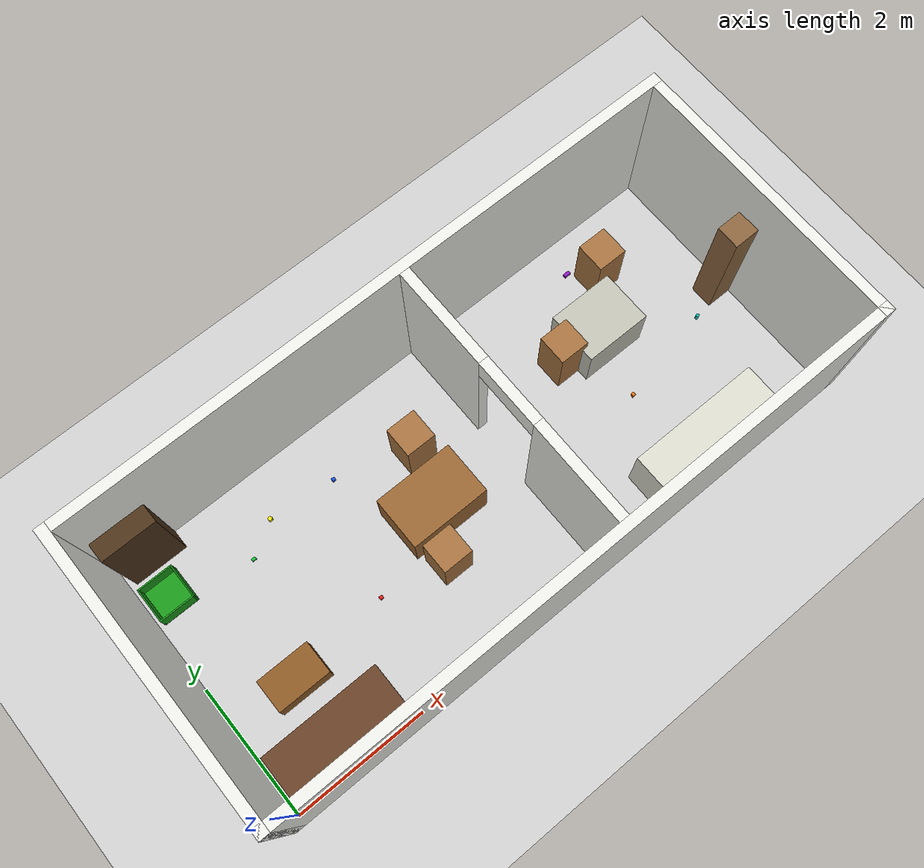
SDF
<?xml version="1.0" ?>
<sdf version="1.6">
<world name="tidybot_home">

  <!-- ================================================================
       PHYSICS
       ================================================================ -->
  <physics type="ode" name="default_physics">
    <max_step_size>0.001</max_step_size>
    <real_time_factor>1.0</real_time_factor>
    <real_time_update_rate>1000</real_time_update_rate>
    <gravity>0 0 -9.81</gravity>
    <ode>
      <solver>
        <type>quick</type>
        <iters>50</iters>
        <sor>1.3</sor>
      </solver>
      <constraints>
        <cfm>0.0</cfm>
        <erp>0.2</erp>
        <contact_max_correcting_vel>100.0</contact_max_correcting_vel>
        <contact_surface_layer>0.001</contact_surface_layer>
      </constraints>
    </ode>
  </physics>

  <!-- ================================================================
       SCENE / LIGHTING
       ================================================================ -->
  <scene>
    <ambient>0.4 0.4 0.4 1</ambient>
    <background>0.7 0.7 0.7 1</background>
    <shadows>true</shadows>
  </scene>

  <!-- Sun (directional, angled to cast soft indoor shadows) -->
  <light type="directional" name="sun">
    <cast_shadows>true</cast_shadows>
    <pose>0 0 10 0 0.4 0</pose>
    <diffuse>0.85 0.85 0.85 1</diffuse>
    <specular>0.2  0.2  0.2  1</specular>
    <direction>-0.5 0.1 -0.9</direction>
    <attenuation><range>1000</range><constant>0.9</constant><linear>0.01</linear><quadratic>0.001</quadratic></attenuation>
  </light>

  <!-- Ceiling fill light over Room 1 -->
  <light type="point" name="room1_fill">
    <pose>2.5 2.0 2.4 0 0 0</pose>
    <diffuse>0.6 0.6 0.6 1</diffuse>
    <specular>0.1 0.1 0.1 1</specular>
    <attenuation><range>8</range><constant>0.5</constant><linear>0.1</linear><quadratic>0.01</quadratic></attenuation>
  </light>

  <!-- Ceiling fill light over Room 2 -->
  <light type="point" name="room2_fill">
    <pose>7.15 2.0 2.4 0 0 0</pose>
    <diffuse>0.6 0.6 0.6 1</diffuse>
    <specular>0.1 0.1 0.1 1</specular>
    <attenuation><range>8</range><constant>0.5</constant><linear>0.1</linear><quadratic>0.01</quadratic></attenuation>
  </light>

  <model name="ground_plane">
    <static>true</static>
    <link name="link">
      <collision name="collision">
        <geometry><plane><normal>0 0 1</normal><size>30 30</size></plane></geometry>
        <surface>
          <friction>
            <ode><mu>0.8</mu><mu2>0.8</mu2></ode>
          </friction>
          <contact><ode><min_depth>0.001</min_depth></ode></contact>
          <bounce><restitution_coefficient>0</restitution_coefficient><threshold>1e6</threshold></bounce>
        </surface>
      </collision>
      <visual name="visual">
        <geometry><plane><normal>0 0 1</normal><size>30 30</size></plane></geometry>
        <material>
          <script><uri>file://media/materials/scripts/gazebo.material</uri><name>Gazebo/Grey</name></script>
        </material>
      </visual>
    </link>
  </model>

  <!-- WEST WALL (Room 1 left boundary) -->
  <!-- Centre: x=-0.075, y=2.0, z=1.25 | size: 0.15 x 4.30 x 2.5 -->
  <model name="wall_west">
    <static>true</static>
    <pose>-0.075 2.0 1.25 0 0 0</pose>
    <link name="link">
      <collision name="col"><geometry><box><size>0.15 4.30 2.5</size></box></geometry>
        <surface><friction><ode><mu>0.7</mu><mu2>0.7</mu2></ode></friction></surface>
      </collision>
      <visual name="vis"><geometry><box><size>0.15 4.30 2.5</size></box></geometry>
        <material><ambient>0.92 0.92 0.90 1</ambient><diffuse>0.92 0.92 0.90 1</diffuse></material>
      </visual>
    </link>
  </model>

  <!-- SOUTH WALL (full span, both rooms) -->
  <!-- Center: x=4.575, y=-0.075, z=1.25 | size: 9.45 x 0.15 x 2.5 -->
  <model name="wall_south">
    <static>true</static>
    <pose>4.575 -0.075 1.25 0 0 0</pose>
    <link name="link">
      <collision name="col"><geometry><box><size>9.45 0.15 2.5</size></box></geometry>
        <surface><friction><ode><mu>0.7</mu><mu2>0.7</mu2></ode></friction></surface>
      </collision>
      <visual name="vis"><geometry><box><size>9.45 0.15 2.5</size></box></geometry>
        <material><ambient>0.92 0.92 0.90 1</ambient><diffuse>0.92 0.92 0.90 1</diffuse></material>
      </visual>
    </link>
  </model>

  <!-- NORTH WALL (full span, both rooms) -->
  <!-- Center: x=4.575, y=4.075, z=1.25 | size: 9.45 x 0.15 x 2.5 -->
  <model name="wall_north">
    <static>true</static>
    <pose>4.575 4.075 1.25 0 0 0</pose>
    <link name="link">
      <collision name="col"><geometry><box><size>9.45 0.15 2.5</size></box></geometry>
        <surface><friction><ode><mu>0.7</mu><mu2>0.7</mu2></ode></friction></surface>
      </collision>
      <visual name="vis"><geometry><box><size>9.45 0.15 2.5</size></box></geometry>
        <material><ambient>0.92 0.92 0.90 1</ambient><diffuse>0.92 0.92 0.90 1</diffuse></material>
      </visual>
    </link>
  </model>

  <!-- EAST WALL (Room 2 right boundary) -->
  <!-- Center: x=9.225, y=2.0, z=1.25 | size: 0.15 x 4.30 x 2.5 -->
  <model name="wall_east">
    <static>true</static>
    <pose>9.225 2.0 1.25 0 0 0</pose>
    <link name="link">
      <collision name="col"><geometry><box><size>0.15 4.30 2.5</size></box></geometry>
        <surface><friction><ode><mu>0.7</mu><mu2>0.7</mu2></ode></friction></surface>
      </collision>
      <visual name="vis"><geometry><box><size>0.15 4.30 2.5</size></box></geometry>
        <material><ambient>0.92 0.92 0.90 1</ambient><diffuse>0.92 0.92 0.90 1</diffuse></material>
      </visual>
    </link>
  </model>

  <!-- SHARED WALL SEGMENT 1 (below doorway: y=[0,1.5]) -->
  <!-- Center: x=5.075, y=0.75, z=1.25 | size: 0.15 x 1.50 x 2.5 -->
  <model name="wall_shared_south">
    <static>true</static>
    <pose>5.075 0.75 1.25 0 0 0</pose>
    <link name="link">
      <collision name="col"><geometry><box><size>0.15 1.50 2.5</size></box></geometry>
        <surface><friction><ode><mu>0.7</mu><mu2>0.7</mu2></ode></friction></surface>
      </collision>
      <visual name="vis"><geometry><box><size>0.15 1.50 2.5</size></box></geometry>
        <material><ambient>0.92 0.92 0.90 1</ambient><diffuse>0.92 0.92 0.90 1</diffuse></material>
      </visual>
    </link>
  </model>

  <!-- SHARED WALL SEGMENT 2 (above doorway: y=[2.5,4.0]) -->
  <!-- Center: x=5.075, y=3.25, z=1.25 | size: 0.15 x 1.50 x 2.5 -->
  <model name="wall_shared_north">
    <static>true</static>
    <pose>5.075 3.25 1.25 0 0 0</pose>
    <link name="link">
      <collision name="col"><geometry><box><size>0.15 1.50 2.5</size></box></geometry>
        <surface><friction><ode><mu>0.7</mu><mu2>0.7</mu2></ode></friction></surface>
      </collision>
      <visual name="vis"><geometry><box><size>0.15 1.50 2.5</size></box></geometry>
        <material><ambient>0.92 0.92 0.90 1</ambient><diffuse>0.92 0.92 0.90 1</diffuse></material>
      </visual>
    </link>
  </model>

  <!-- DOORWAY HEADER (lintel above the 1m doorway gap, closes wall visually) -->
  <!-- y=[1.5,2.5], z=[2.1,2.5], x=5.075 | size: 0.15 x 1.0 x 0.4 -->
  <model name="wall_shared_lintel">
    <static>true</static>
    <pose>5.075 2.0 2.3 0 0 0</pose>
    <link name="link">
      <collision name="col"><geometry><box><size>0.15 1.0 0.4</size></box></geometry>
        <surface><friction><ode><mu>0.7</mu><mu2>0.7</mu2></ode></friction></surface>
      </collision>
      <visual name="vis"><geometry><box><size>0.15 1.0 0.4</size></box></geometry>
        <material><ambient>0.92 0.92 0.90 1</ambient><diffuse>0.92 0.92 0.90 1</diffuse></material>
      </visual>
    </link>
  </model>

  <!-- SOFA (against south wall, room 1) -->
  <!-- 1.8 x 0.7 x 0.5 m | Center: (1.0, 0.45, 0.25) -->
  <model name="sofa">
    <static>true</static>
    <pose>1.0 0.45 0.25 0 0 0</pose>
    <link name="link">
      <collision name="col">
        <geometry><box><size>1.8 0.7 0.5</size></box></geometry>
        <surface><friction><ode><mu>0.6</mu><mu2>0.6</mu2></ode></friction></surface>
      </collision>
      <visual name="vis">
        <geometry><box><size>1.8 0.7 0.5</size></box></geometry>
        <material><ambient>0.40 0.25 0.15 1</ambient><diffuse>0.40 0.25 0.15 1</diffuse></material>
      </visual>
    </link>
  </model>

  <!-- COFFEE TABLE (in front of sofa) -->
  <!-- 0.8 x 0.5 x 0.4 m | Center: (1.0, 1.35, 0.2) -->
  <model name="coffee_table">
    <static>true</static>
    <pose>1.0 1.35 0.2 0 0 0</pose>
    <link name="link">
      <collision name="col">
        <geometry><box><size>0.8 0.5 0.4</size></box></geometry>
        <surface><friction><ode><mu>0.6</mu><mu2>0.6</mu2></ode></friction></surface>
      </collision>
      <visual name="vis">
        <geometry><box><size>0.8 0.5 0.4</size></box></geometry>
        <material><ambient>0.55 0.35 0.15 1</ambient><diffuse>0.55 0.35 0.15 1</diffuse></material>
      </visual>
    </link>
  </model>

  <!-- DINING TABLE (Room 1) -->
  <!-- 1.2 x 0.8 x 0.75 m | Center: (3.8, 2.0, 0.375) -->
  <model name="dining_table">
    <static>true</static>
    <pose>3.8 2.0 0.375 0 0 0</pose>
    <link name="link">
      <collision name="col">
        <geometry><box><size>1.2 0.8 0.75</size></box></geometry>
        <surface><friction><ode><mu>0.6</mu><mu2>0.6</mu2></ode></friction></surface>
      </collision>
      <visual name="vis">
        <geometry><box><size>1.2 0.8 0.75</size></box></geometry>
        <material><ambient>0.60 0.40 0.20 1</ambient><diffuse>0.60 0.40 0.20 1</diffuse></material>
      </visual>
    </link>
  </model>

  <!-- CHAIR 1 (south side of dining table) -->
  <!-- 0.45 x 0.45 x 0.9 m | Center: (3.5, 1.3, 0.45) -->
  <model name="chair_1">
    <static>true</static>
    <pose>3.5 1.3 0.45 0 0 0</pose>
    <link name="link">
      <collision name="col">
        <geometry><box><size>0.45 0.45 0.9</size></box></geometry>
        <surface><friction><ode><mu>0.6</mu><mu2>0.6</mu2></ode></friction></surface>
      </collision>
      <visual name="vis">
        <geometry><box><size>0.45 0.45 0.9</size></box></geometry>
        <material><ambient>0.65 0.45 0.25 1</ambient><diffuse>0.65 0.45 0.25 1</diffuse></material>
      </visual>
    </link>
  </model>

  <!-- CHAIR 2 (north side of dining table) -->
  <!-- Center: (4.1, 2.8, 0.45) -->
  <model name="chair_2">
    <static>true</static>
    <pose>4.1 2.8 0.45 0 0 0</pose>
    <link name="link">
      <collision name="col">
        <geometry><box><size>0.45 0.45 0.9</size></box></geometry>
        <surface><friction><ode><mu>0.6</mu><mu2>0.6</mu2></ode></friction></surface>
      </collision>
      <visual name="vis">
        <geometry><box><size>0.45 0.45 0.9</size></box></geometry>
        <material><ambient>0.65 0.45 0.25 1</ambient><diffuse>0.65 0.45 0.25 1</diffuse></material>
      </visual>
    </link>
  </model>

  <!-- BOOKSHELF (against north wall, Room 1) — narrow passage near wall -->
  <!-- 0.8 x 0.30 x 1.5 m | Center: (0.5, 3.87, 0.75) -->
  <model name="bookshelf">
    <static>true</static>
    <pose>0.5 3.87 0.75 0 0 0</pose>
    <link name="link">
      <collision name="col">
        <geometry><box><size>0.8 0.30 1.5</size></box></geometry>
        <surface><friction><ode><mu>0.5</mu><mu2>0.5</mu2></ode></friction></surface>
      </collision>
      <visual name="vis">
        <geometry><box><size>0.8 0.30 1.5</size></box></geometry>
        <material><ambient>0.30 0.20 0.10 1</ambient><diffuse>0.30 0.20 0.10 1</diffuse></material>
      </visual>
    </link>
  </model>

  <!-- ================================================================
       FURNITURE — ROOM 2 (Kitchen)
       ================================================================ -->

  <!-- KITCHEN COUNTER (against south wall, Room 2) -->
  <!-- 2.0 x 0.6 x 0.9 m | Center: (7.15, 0.35, 0.45) -->
  <model name="kitchen_counter">
    <static>true</static>
    <pose>7.15 0.35 0.45 0 0 0</pose>
    <link name="link">
      <collision name="col">
        <geometry><box><size>2.0 0.6 0.9</size></box></geometry>
        <surface><friction><ode><mu>0.6</mu><mu2>0.6</mu2></ode></friction></surface>
      </collision>
      <visual name="vis">
        <geometry><box><size>2.0 0.6 0.9</size></box></geometry>
        <material><ambient>0.85 0.85 0.80 1</ambient><diffuse>0.85 0.85 0.80 1</diffuse></material>
      </visual>
    </link>
  </model>

  <!-- KITCHEN TABLE (Room 2) -->
  <!-- 1.0 x 0.8 x 0.75 m | Center: (7.15, 2.5, 0.375) -->
  <model name="kitchen_table">
    <static>true</static>
    <pose>7.15 2.5 0.375 0 0 0</pose>
    <link name="link">
      <collision name="col">
        <geometry><box><size>1.0 0.8 0.75</size></box></geometry>
        <surface><friction><ode><mu>0.6</mu><mu2>0.6</mu2></ode></friction></surface>
      </collision>
      <visual name="vis">
        <geometry><box><size>1.0 0.8 0.75</size></box></geometry>
        <material><ambient>0.75 0.75 0.70 1</ambient><diffuse>0.75 0.75 0.70 1</diffuse></material>
      </visual>
    </link>
  </model>

  <!-- CHAIR 3 (west side of kitchen table) -->
  <!-- Center: (6.5, 2.5, 0.45) -->
  <model name="chair_3">
    <static>true</static>
    <pose>6.5 2.5 0.45 0 0 0</pose>
    <link name="link">
      <collision name="col">
        <geometry><box><size>0.45 0.45 0.9</size></box></geometry>
        <surface><friction><ode><mu>0.6</mu><mu2>0.6</mu2></ode></friction></surface>
      </collision>
      <visual name="vis">
        <geometry><box><size>0.45 0.45 0.9</size></box></geometry>
        <material><ambient>0.65 0.45 0.25 1</ambient><diffuse>0.65 0.45 0.25 1</diffuse></material>
      </visual>
    </link>
  </model>

  <!-- CHAIR 4 (north-east side of kitchen table) — partially blocking path -->
  <!-- Center: (7.8, 3.2, 0.45) -->
  <model name="chair_4">
    <static>true</static>
    <pose>7.8 3.2 0.45 0 0 0</pose>
    <link name="link">
      <collision name="col">
        <geometry><box><size>0.45 0.45 0.9</size></box></geometry>
        <surface><friction><ode><mu>0.6</mu><mu2>0.6</mu2></ode></friction></surface>
      </collision>
      <visual name="vis">
        <geometry><box><size>0.45 0.45 0.9</size></box></geometry>
        <material><ambient>0.65 0.45 0.25 1</ambient><diffuse>0.65 0.45 0.25 1</diffuse></material>
      </visual>
    </link>
  </model>

  <!-- TALL CABINET (against east wall, Room 2) -->
  <!-- 0.6 x 0.35 x 1.8 m | Center: (9.07, 2.0, 0.9) -->
  <model name="cabinet">
    <static>true</static>
    <pose>9.07 2.0 0.9 0 0 0</pose>
    <link name="link">
      <collision name="col">
        <geometry><box><size>0.6 0.35 1.8</size></box></geometry>
        <surface><friction><ode><mu>0.5</mu><mu2>0.5</mu2></ode></friction></surface>
      </collision>
      <visual name="vis">
        <geometry><box><size>0.6 0.35 1.8</size></box></geometry>
        <material><ambient>0.55 0.40 0.25 1</ambient><diffuse>0.55 0.40 0.25 1</diffuse></material>
      </visual>
    </link>
  </model>

  <!-- Box floor — solid base so deposited objects don't fall through -->
  <model name="cbox_floor">
    <static>true</static>
    <pose>0.35 3.3 0.01 0 0 0</pose>
    <link name="link">
      <collision name="col"><geometry><box><size>0.54 0.54 0.02</size></box></geometry>
        <surface><friction><ode><mu>0.6</mu><mu2>0.6</mu2></ode></friction></surface>
      </collision>
      <visual name="vis"><geometry><box><size>0.54 0.54 0.02</size></box></geometry>
        <material><ambient>0.10 0.60 0.10 1</ambient><diffuse>0.10 0.60 0.10 1</diffuse></material>
      </visual>
    </link>
  </model>

  <!-- Box south wall -->
  <model name="cbox_wall_s">
    <static>true</static>
    <pose>0.35 3.04 0.145 0 0 0</pose>
    <link name="link">
      <collision name="col"><geometry><box><size>0.54 0.02 0.27</size></box></geometry>
        <surface><friction><ode><mu>0.6</mu><mu2>0.6</mu2></ode></friction></surface>
      </collision>
      <visual name="vis"><geometry><box><size>0.54 0.02 0.27</size></box></geometry>
        <material><ambient>0.10 0.60 0.10 1</ambient><diffuse>0.10 0.60 0.10 1</diffuse></material>
      </visual>
    </link>
  </model>

  <!-- Box north wall -->
  <model name="cbox_wall_n">
    <static>true</static>
    <pose>0.35 3.56 0.145 0 0 0</pose>
    <link name="link">
      <collision name="col"><geometry><box><size>0.54 0.02 0.27</size></box></geometry>
        <surface><friction><ode><mu>0.6</mu><mu2>0.6</mu2></ode></friction></surface>
      </collision>
      <visual name="vis"><geometry><box><size>0.54 0.02 0.27</size></box></geometry>
        <material><ambient>0.10 0.60 0.10 1</ambient><diffuse>0.10 0.60 0.10 1</diffuse></material>
      </visual>
    </link>
  </model>

  <!-- Box west wall -->
  <model name="cbox_wall_w">
    <static>true</static>
    <pose>0.09 3.3 0.145 0 0 0</pose>
    <link name="link">
      <collision name="col"><geometry><box><size>0.02 0.54 0.27</size></box></geometry>
        <surface><friction><ode><mu>0.6</mu><mu2>0.6</mu2></ode></friction></surface>
      </collision>
      <visual name="vis"><geometry><box><size>0.02 0.54 0.27</size></box></geometry>
        <material><ambient>0.10 0.60 0.10 1</ambient><diffuse>0.10 0.60 0.10 1</diffuse></material>
      </visual>
    </link>
  </model>

  <!-- Box east wall -->
  <model name="cbox_wall_e">
    <static>true</static>
    <pose>0.61 3.3 0.145 0 0 0</pose>
    <link name="link">
      <collision name="col"><geometry><box><size>0.02 0.54 0.27</size></box></geometry>
        <surface><friction><ode><mu>0.6</mu><mu2>0.6</mu2></ode></friction></surface>
      </collision>
      <visual name="vis"><geometry><box><size>0.02 0.54 0.27</size></box></geometry>
        <material><ambient>0.10 0.60 0.10 1</ambient><diffuse>0.10 0.60 0.10 1</diffuse></material>
      </visual>
    </link>
  </model>

  <!-- Object 1: Red block (Room 1, open floor area) -->

  <model name="obj_red_block">
    <pose>2.5 1.5 0.025 0 0 0</pose>
    <link name="link">
      <inertial><mass>0.30</mass>
        <inertia><ixx>0.000125</ixx><ixy>0</ixy><ixz>0</ixz><iyy>0.000125</iyy><iyz>0</iyz><izz>0.000125</izz></inertia>
      </inertial>
      <collision name="col"><geometry><box><size>0.05 0.05 0.05</size></box></geometry>
        <surface>
          <friction><ode><mu>0.5</mu><mu2>0.5</mu2></ode></friction>
          <contact><ode><min_depth>0.001</min_depth></ode></contact>
          <bounce><restitution_coefficient>0.0</restitution_coefficient><threshold>1e6</threshold></bounce>
        </surface>
      </collision>
      <visual name="vis"><geometry><box><size>0.05 0.05 0.05</size></box></geometry>
        <material><ambient>0.85 0.10 0.10 1</ambient><diffuse>0.85 0.10 0.10 1</diffuse></material>
      </visual>
    </link>
  </model>

  <!-- Object 2: Blue block (Room 1, near dining table) -->

  <model name="obj_blue_block">
    <pose>3.0 3.2 0.025 0 0 0</pose>
    <link name="link">
      <inertial><mass>0.30</mass>
        <inertia><ixx>0.000125</ixx><ixy>0</ixy><ixz>0</ixz><iyy>0.000125</iyy><iyz>0</iyz><izz>0.000125</izz></inertia>
      </inertial>
      <collision name="col"><geometry><box><size>0.05 0.05 0.05</size></box></geometry>
        <surface>
          <friction><ode><mu>0.5</mu><mu2>0.5</mu2></ode></friction>
          <contact><ode><min_depth>0.001</min_depth></ode></contact>
          <bounce><restitution_coefficient>0.0</restitution_coefficient><threshold>1e6</threshold></bounce>
        </surface>
      </collision>
      <visual name="vis"><geometry><box><size>0.05 0.05 0.05</size></box></geometry>
        <material><ambient>0.10 0.30 0.85 1</ambient><diffuse>0.10 0.30 0.85 1</diffuse></material>
      </visual>
    </link>
  </model>

  <!-- Object 3: Yellow cylinder — "can" (Room 1, against west wall) -->
  <!-- r=0.03m, h=0.08m, mass=0.25kg -->
  <!-- Inertia (axis z): Ixx=Iyy=m/12*(3r^2+h^2) Izz=m/2*r^2 -->
  <!-- Ixx = 0.25/12*(0.0027+0.0064)=0.000190  Izz=0.25/2*0.0009=0.0001125 -->
  <model name="obj_yellow_can">
    <pose>2.0 3.3 0.04 0 0 0</pose>
    <link name="link">
      <inertial><mass>0.25</mass>
        <inertia><ixx>0.000190</ixx><ixy>0</ixy><ixz>0</ixz><iyy>0.000190</iyy><iyz>0</iyz><izz>0.000113</izz></inertia>
      </inertial>
      <collision name="col"><geometry><cylinder><radius>0.03</radius><length>0.08</length></cylinder></geometry>
        <surface>
          <friction><ode><mu>0.5</mu><mu2>0.5</mu2></ode></friction>
          <contact><ode><min_depth>0.001</min_depth></ode></contact>
          <bounce><restitution_coefficient>0.0</restitution_coefficient><threshold>1e6</threshold></bounce>
        </surface>
      </collision>
      <visual name="vis"><geometry><cylinder><radius>0.03</radius><length>0.08</length></cylinder></geometry>
        <material><ambient>0.95 0.90 0.05 1</ambient><diffuse>0.95 0.90 0.05 1</diffuse></material>
      </visual>
    </link>
  </model>

  <!-- Object 4: Green small box (Room 1, between sofa and bookshelf) -->
  <!-- 0.06 x 0.04 x 0.04 m, mass=0.25 kg -->
  <model name="obj_green_box">
    <pose>1.5 3.0 0.02 0 0 0</pose>
    <link name="link">
      <inertial><mass>0.25</mass>
        <inertia><ixx>0.0000533</ixx><ixy>0</ixy><ixz>0</ixz><iyy>0.0000650</iyy><iyz>0</iyz><izz>0.0000433</izz></inertia>
      </inertial>
      <collision name="col"><geometry><box><size>0.06 0.04 0.04</size></box></geometry>
        <surface>
          <friction><ode><mu>0.5</mu><mu2>0.5</mu2></ode></friction>
          <contact><ode><min_depth>0.001</min_depth></ode></contact>
          <bounce><restitution_coefficient>0.0</restitution_coefficient><threshold>1e6</threshold></bounce>
        </surface>
      </collision>
      <visual name="vis"><geometry><box><size>0.06 0.04 0.04</size></box></geometry>
        <material><ambient>0.10 0.70 0.20 1</ambient><diffuse>0.10 0.70 0.20 1</diffuse></material>
      </visual>
    </link>
  </model>

  <!-- Object 5: Orange block (Room 2, Kitchen area floor) -->
  <model name="obj_orange_block">
    <pose>7.0 1.5 0.025 0 0 0</pose>
    <link name="link">
      <inertial><mass>0.30</mass>
        <inertia><ixx>0.000125</ixx><ixy>0</ixy><ixz>0</ixz><iyy>0.000125</iyy><iyz>0</iyz><izz>0.000125</izz></inertia>
      </inertial>
      <collision name="col"><geometry><box><size>0.05 0.05 0.05</size></box></geometry>
        <surface>
          <friction><ode><mu>0.5</mu><mu2>0.5</mu2></ode></friction>
          <contact><ode><min_depth>0.001</min_depth></ode></contact>
          <bounce><restitution_coefficient>0.0</restitution_coefficient><threshold>1e6</threshold></bounce>
        </surface>
      </collision>
      <visual name="vis"><geometry><box><size>0.05 0.05 0.05</size></box></geometry>
        <material><ambient>0.90 0.45 0.05 1</ambient><diffuse>0.90 0.45 0.05 1</diffuse></material>
      </visual>
    </link>
  </model>

  <!-- Object 6: Teal cylinder — "bottle" (Room 2, near cabinet) -->
  <!-- r=0.025m, h=0.10m, mass=0.20 kg -->
  <!-- Inertia: Ixx=Iyy=0.20/12*(3*0.000625+0.01)=0.000197  Izz=0.20/2*0.000625=0.0000625 -->
  <model name="obj_teal_bottle">
    <pose>8.5 1.8 0.05 0 0 0</pose>
    <link name="link">
      <inertial><mass>0.20</mass>
        <inertia><ixx>0.000197</ixx><ixy>0</ixy><ixz>0</ixz><iyy>0.000197</iyy><iyz>0</iyz><izz>0.0000625</izz></inertia>
      </inertial>
      <collision name="col"><geometry><cylinder><radius>0.025</radius><length>0.10</length></cylinder></geometry>
        <surface>
          <friction><ode><mu>0.5</mu><mu2>0.5</mu2></ode></friction>
          <contact><ode><min_depth>0.001</min_depth></ode></contact>
          <bounce><restitution_coefficient>0.0</restitution_coefficient><threshold>1e6</threshold></bounce>
        </surface>
      </collision>
      <visual name="vis"><geometry><cylinder><radius>0.025</radius><length>0.10</length></cylinder></geometry>
        <material><ambient>0.05 0.70 0.65 1</ambient><diffuse>0.05 0.70 0.65 1</diffuse></material>
      </visual>
    </link>
  </model>

  <!-- Object 7 (bonus): Purple box — "shoe" (Room 2, near kitchen table) -->
  <!-- 0.10 x 0.05 x 0.05 m, mass=0.40 kg -->
  <!-- Inertia: Ixx=0.4/12*(0.0025+0.0025)=0.000167  Iyy=0.4/12*(0.01+0.0025)=0.000417  Izz=0.4/12*(0.01+0.0025)=0.000417 -->
  <model name="obj_purple_shoe">

    <pose>7.5 3.5 0.025 0 0 0</pose>
    <link name="link">
      <inertial><mass>0.40</mass>
        <inertia><ixx>0.000167</ixx><ixy>0</ixy><ixz>0</ixz><iyy>0.000417</iyy><iyz>0</iyz><izz>0.000417</izz></inertia>
      </inertial>
      <collision name="col"><geometry><box><size>0.10 0.05 0.05</size></box></geometry>
        <surface>
          <friction><ode><mu>0.5</mu><mu2>0.5</mu2></ode></friction>
          <contact><ode><min_depth>0.001</min_depth></ode></contact>
          <bounce><restitution_coefficient>0.0</restitution_coefficient><threshold>1e6</threshold></bounce>
        </surface>
      </collision>
      <visual name="vis"><geometry><box><size>0.10 0.05 0.05</size></box></geometry>
        <material><ambient>0.55 0.10 0.75 1</ambient><diffuse>0.55 0.10 0.75 1</diffuse></material>
      </visual>
    </link>
  </model>

</world>
</sdf>
